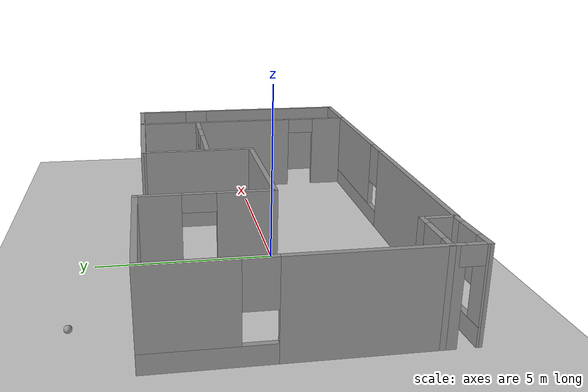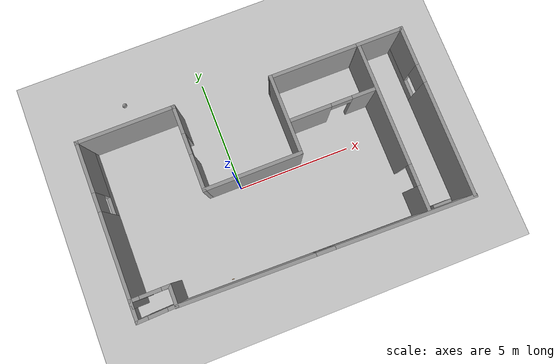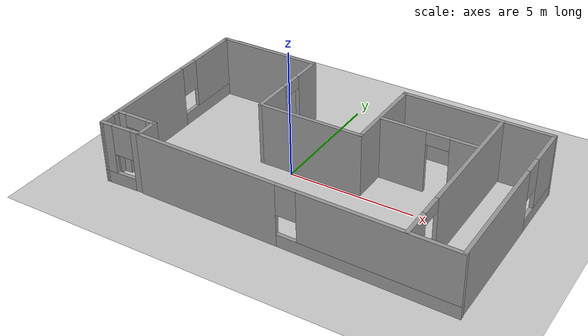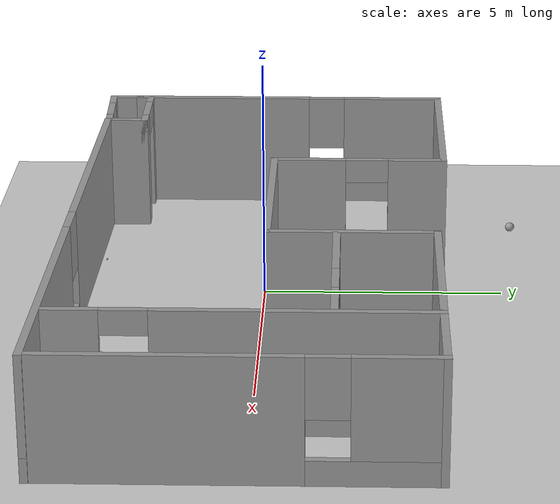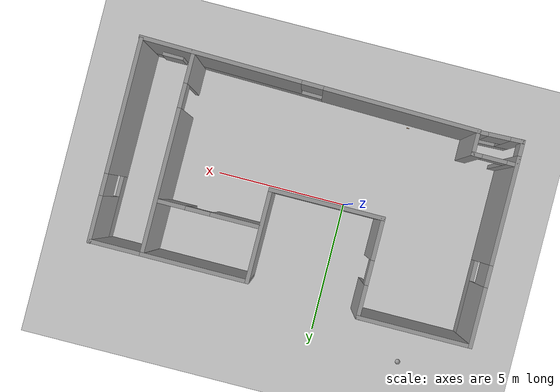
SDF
<sdf version="1.6">
 <world name="default">
  <light name="sun" type="directional">
   <pose>0 0 10 0 -0 0</pose>
   <diffuse>0.8 0.8 0.8 1</diffuse>
   <specular>0.2 0.2 0.2 1</specular>
   <attenuation>
    <range>1000</range>
    <constant>0.9</constant>
    <linear>0.01</linear>
    <quadratic>0.001</quadratic>
   </attenuation>
   <direction>-0.5 0.1 -0.9</direction>
  </light>
  <model name="ground_plane">
   <static>1</static>
   <link name="link">
    <collision name="collision">
     <geometry><plane><normal>0 0 1</normal><size>100 100</size></plane></geometry>
     <surface>
      <contact><collide_bitmask>65535</collide_bitmask></contact>
      <friction><ode><mu>100</mu><mu2>50</mu2></ode></friction>
     </surface>
    </collision>
    <visual name="visual">
     <cast_shadows>0</cast_shadows>
     <geometry><plane><normal>0 0 1</normal><size>100 100</size></plane></geometry>
     <material>
      <script><uri>file://media/materials/scripts/gazebo.material</uri><name>Gazebo/Grey</name></script>
     </material>
    </visual>
   </link>
  </model>
  <gravity>0 0 -9.8</gravity>
  <magnetic_field>6e-06 2.3e-05 -4.2e-05</magnetic_field>
  <atmosphere type="adiabatic"/>
  <physics name="default_physics" default="0" type="ode">
   <max_step_size>0.001</max_step_size>
   <real_time_factor>1</real_time_factor>
   <real_time_update_rate>1000</real_time_update_rate>
  </physics>
  <scene><ambient>0.4 0.4 0.4 1</ambient><background>0.7 0.7 0.7 1</background><shadows>1</shadows></scene>
  <spherical_coordinates>
   <surface_model>EARTH_WGS84</surface_model>
   <latitude_deg>0</latitude_deg>
   <longitude_deg>0</longitude_deg>
   <elevation>0</elevation>
   <heading_deg>0</heading_deg>
  </spherical_coordinates>
  <model name="class">
   <pose>1.54338 -0.063628 0 0 -0 0</pose>
   <link name="Wall_0">
    <pose>-6.98338 0.408628 0 0 -0 1.5708</pose>
    <visual name="Wall_0_Visual_0">
     <pose>-1.50964 0 1.25 0 -0 0</pose>
     <geometry><box><size>3.98071 0.15 2.5</size></box></geometry>
     <material>
      <script><uri>file://media/materials/scripts/gazebo.material</uri><name>Gazebo/Grey</name></script>
      <ambient>1 1 1 1</ambient>
     </material>
     <meta><layer>0</layer></meta>
    </visual>
    <collision name="Wall_0_Collision_0">
     <geometry><box><size>3.98071 0.15 2.5</size></box></geometry>
     <pose>-1.50964 0 1.25 0 -0 0</pose>
    </collision>
    <visual name="Wall_0_Visual_1">
     <pose>1.99036 0 0.25 0 -0 0</pose>
     <geometry><box><size>3.01929 0.15 0.5</size></box></geometry>
     <material>
      <script><uri>file://media/materials/scripts/gazebo.material</uri><name>Gazebo/Grey</name></script>
      <ambient>1 1 1 1</ambient>
     </material>
     <meta><layer>0</layer></meta>
    </visual>
    <collision name="Wall_0_Collision_1">
     <geometry><box><size>3.01929 0.15 0.5</size></box></geometry>
     <pose>1.99036 0 0.25 0 -0 0</pose>
    </collision>
    <visual name="Wall_0_Visual_2">
     <pose>2.39036 0 1.5 0 -0 0</pose>
     <geometry><box><size>2.21929 0.15 2</size></box></geometry>
     <material>
      <script><uri>file://media/materials/scripts/gazebo.material</uri><name>Gazebo/Grey</name></script>
      <ambient>1 1 1 1</ambient>
     </material>
     <meta><layer>0</layer></meta>
    </visual>
    <collision name="Wall_0_Collision_2">
     <geometry><box><size>2.21929 0.15 2</size></box></geometry>
     <pose>2.39036 0 1.5 0 -0 0</pose>
    </collision>
    <visual name="Wall_0_Visual_3">
     <pose>0.880714 0 1.9 0 -0 0</pose>
     <geometry><box><size>0.8 0.15 1.2</size></box></geometry>
     <material>
      <script><uri>file://media/materials/scripts/gazebo.material</uri><name>Gazebo/Grey</name></script>
      <ambient>1 1 1 1</ambient>
     </material>
     <meta><layer>0</layer></meta>
    </visual>
    <collision name="Wall_0_Collision_3">
     <geometry><box><size>0.8 0.15 1.2</size></box></geometry>
     <pose>0.880714 0 1.9 0 -0 0</pose>
    </collision>
   </link>
   <link name="Wall_13">
    <collision name="Wall_13_Collision">
     <geometry><box><size>4.25 0.15 2.5</size></box></geometry>
     <pose>0 0 1.25 0 -0 0</pose>
    </collision>
    <visual name="Wall_13_Visual">
     <pose>0 0 1.25 0 -0 0</pose>
     <geometry><box><size>4.25 0.15 2.5</size></box></geometry>
     <material>
      <script><uri>file://media/materials/scripts/gazebo.material</uri><name>Gazebo/Grey</name></script>
      <ambient>1 1 1 1</ambient>
     </material>
     <meta><layer>0</layer></meta>
    </visual>
    <pose>-4.93338 3.83363 0 0 -0 0</pose>
   </link>
   <link name="Wall_14">
    <pose>-2.88338 2.03363 0 0 0 -1.5708</pose>
    <visual name="Wall_14_Visual_0">
     <pose>-1.24935 0 1.25 0 -0 0</pose>
     <geometry><box><size>1.25129 0.15 2.5</size></box></geometry>
     <material>
      <script><uri>file://media/materials/scripts/gazebo.material</uri><name>Gazebo/Grey</name></script>
      <ambient>1 1 1 1</ambient>
     </material>
     <meta><layer>0</layer></meta>
    </visual>
    <collision name="Wall_14_Collision_0">
     <geometry><box><size>1.25129 0.15 2.5</size></box></geometry>
     <pose>-1.24935 0 1.25 0 -0 0</pose>
    </collision>
    <visual name="Wall_14_Visual_1">
     <pose>1.07565 0 1.25 0 -0 0</pose>
     <geometry><box><size>1.59871 0.15 2.5</size></box></geometry>
     <material>
      <script><uri>file://media/materials/scripts/gazebo.material</uri><name>Gazebo/Grey</name></script>
      <ambient>1 1 1 1</ambient>
     </material>
     <meta><layer>0</layer></meta>
    </visual>
    <collision name="Wall_14_Collision_1">
     <geometry><box><size>1.59871 0.15 2.5</size></box></geometry>
     <pose>1.07565 0 1.25 0 -0 0</pose>
    </collision>
    <visual name="Wall_14_Visual_2">
     <pose>-0.173708 0 2.25 0 -0 0</pose>
     <geometry><box><size>0.9 0.15 0.5</size></box></geometry>
     <material>
      <script><uri>file://media/materials/scripts/gazebo.material</uri><name>Gazebo/Grey</name></script>
      <ambient>1 1 1 1</ambient>
     </material>
     <meta><layer>0</layer></meta>
    </visual>
    <collision name="Wall_14_Collision_2">
     <geometry><box><size>0.9 0.15 0.5</size></box></geometry>
     <pose>-0.173708 0 2.25 0 -0 0</pose>
    </collision>
   </link>
   <link name="Wall_15">
    <collision name="Wall_15_Collision">
     <geometry><box><size>4.25 0.15 2.5</size></box></geometry>
     <pose>0 0 1.25 0 -0 0</pose>
    </collision>
    <visual name="Wall_15_Visual">
     <pose>0 0 1.25 0 -0 0</pose>
     <geometry><box><size>4.25 0.15 2.5</size></box></geometry>
     <material>
      <script><uri>file://media/materials/scripts/gazebo.material</uri><name>Gazebo/Grey</name></script>
      <ambient>1 1 1 1</ambient>
     </material>
     <meta><layer>0</layer></meta>
    </visual>
    <pose>-0.833377 0.233628 0 0 -0 0</pose>
   </link>
   <link name="Wall_16">
    <collision name="Wall_16_Collision">
     <geometry><box><size>3.5 0.15 2.5</size></box></geometry>
     <pose>0 0 1.25 0 -0 0</pose>
    </collision>
    <visual name="Wall_16_Visual">
     <pose>0 0 1.25 0 -0 0</pose>
     <geometry><box><size>3.5 0.15 2.5</size></box></geometry>
     <material>
      <script><uri>file://media/materials/scripts/gazebo.material</uri><name>Gazebo/Grey</name></script>
      <ambient>1 1 1 1</ambient>
     </material>
     <meta><layer>0</layer></meta>
    </visual>
    <pose>1.21662 1.90863 0 0 -0 1.5708</pose>
   </link>
   <link name="Wall_17">
    <collision name="Wall_17_Collision">
     <geometry><box><size>3.99399 0.15 2.5</size></box></geometry>
     <pose>0 0 1.25 0 -0 0</pose>
    </collision>
    <visual name="Wall_17_Visual">
     <pose>0 0 1.25 0 -0 0</pose>
     <geometry><box><size>3.99399 0.15 2.5</size></box></geometry>
     <material>
      <script><uri>file://media/materials/scripts/gazebo.material</uri><name>Gazebo/Grey</name></script>
      <ambient>1 1 1 1</ambient>
     </material>
     <meta><layer>0</layer></meta>
    </visual>
    <pose>3.13862 3.58112 0 0 0 -0.001304</pose>
   </link>
   <link name="Wall_18">
    <pose>5.06061 -0.096385 0 0 0 -1.5708</pose>
    <visual name="Wall_18_Visual_0">
     <pose>-1.0444 0 1.25 0 -0 0</pose>
     <geometry><box><size>5.41121 0.15 2.5</size></box></geometry>
     <material>
      <script><uri>file://media/materials/scripts/gazebo.material</uri><name>Gazebo/Grey</name></script>
      <ambient>1 1 1 1</ambient>
     </material>
     <meta><layer>0</layer></meta>
    </visual>
    <collision name="Wall_18_Collision_0">
     <geometry><box><size>5.41121 0.15 2.5</size></box></geometry>
     <pose>-1.0444 0 1.25 0 -0 0</pose>
    </collision>
    <visual name="Wall_18_Visual_1">
     <pose>3.1556 0 1.25 0 -0 0</pose>
     <geometry><box><size>1.18879 0.15 2.5</size></box></geometry>
     <material>
      <script><uri>file://media/materials/scripts/gazebo.material</uri><name>Gazebo/Grey</name></script>
      <ambient>1 1 1 1</ambient>
     </material>
     <meta><layer>0</layer></meta>
    </visual>
    <collision name="Wall_18_Collision_1">
     <geometry><box><size>1.18879 0.15 2.5</size></box></geometry>
     <pose>3.1556 0 1.25 0 -0 0</pose>
    </collision>
    <visual name="Wall_18_Visual_2">
     <pose>2.11121 0 2.25 0 -0 0</pose>
     <geometry><box><size>0.9 0.15 0.5</size></box></geometry>
     <material>
      <script><uri>file://media/materials/scripts/gazebo.material</uri><name>Gazebo/Grey</name></script>
      <ambient>1 1 1 1</ambient>
     </material>
     <meta><layer>0</layer></meta>
    </visual>
    <collision name="Wall_18_Collision_2">
     <geometry><box><size>0.9 0.15 0.5</size></box></geometry>
     <pose>2.11121 0 2.25 0 -0 0</pose>
    </collision>
   </link>
   <link name="Wall_20">
    <pose>6.96662 -0.088002 0 0 -0 1.5708</pose>
    <visual name="Wall_20_Visual_0">
     <pose>-1.27038 0 1.25 0 -0 0</pose>
     <geometry><box><size>4.95923 0.15 2.5</size></box></geometry>
     <material>
      <script><uri>file://media/materials/scripts/gazebo.material</uri><name>Gazebo/Grey</name></script>
      <ambient>1 1 1 1</ambient>
     </material>
     <meta><layer>0</layer></meta>
    </visual>
    <collision name="Wall_20_Collision_0">
     <geometry><box><size>4.95923 0.15 2.5</size></box></geometry>
     <pose>-1.27038 0 1.25 0 -0 0</pose>
    </collision>
    <visual name="Wall_20_Visual_1">
     <pose>2.47962 0 0.25 0 -0 0</pose>
     <geometry><box><size>2.54076 0.15 0.5</size></box></geometry>
     <material>
      <script><uri>file://media/materials/scripts/gazebo.material</uri><name>Gazebo/Grey</name></script>
      <ambient>1 1 1 1</ambient>
     </material>
     <meta><layer>0</layer></meta>
    </visual>
    <collision name="Wall_20_Collision_1">
     <geometry><box><size>2.54076 0.15 0.5</size></box></geometry>
     <pose>2.47962 0 0.25 0 -0 0</pose>
    </collision>
    <visual name="Wall_20_Visual_2">
     <pose>2.87962 0 1.5 0 -0 0</pose>
     <geometry><box><size>1.74076 0.15 2</size></box></geometry>
     <material>
      <script><uri>file://media/materials/scripts/gazebo.material</uri><name>Gazebo/Grey</name></script>
      <ambient>1 1 1 1</ambient>
     </material>
     <meta><layer>0</layer></meta>
    </visual>
    <collision name="Wall_20_Collision_2">
     <geometry><box><size>1.74076 0.15 2</size></box></geometry>
     <pose>2.87962 0 1.5 0 -0 0</pose>
    </collision>
    <visual name="Wall_20_Visual_3">
     <pose>1.60923 0 1.9 0 -0 0</pose>
     <geometry><box><size>0.8 0.15 1.2</size></box></geometry>
     <material>
      <script><uri>file://media/materials/scripts/gazebo.material</uri><name>Gazebo/Grey</name></script>
      <ambient>1 1 1 1</ambient>
     </material>
     <meta><layer>0</layer></meta>
    </visual>
    <collision name="Wall_20_Collision_3">
     <geometry><box><size>0.8 0.15 1.2</size></box></geometry>
     <pose>1.60923 0 1.9 0 -0 0</pose>
    </collision>
   </link>
   <link name="Wall_22">
    <collision name="Wall_22_Collision">
     <geometry><box><size>2 0.15 2.5</size></box></geometry>
     <pose>0 0 1.25 0 -0 0</pose>
    </collision>
    <visual name="Wall_22_Visual">
     <pose>0 0 1.25 0 -0 0</pose>
     <geometry><box><size>2 0.15 2.5</size></box></geometry>
     <material>
      <script><uri>file://media/materials/scripts/gazebo.material</uri><name>Gazebo/Grey</name></script>
      <ambient>1 1 1 1</ambient>
     </material>
     <meta><layer>0</layer></meta>
    </visual>
    <pose>5.96831 3.57862 0 0 -0 0</pose>
   </link>
   <link name="Wall_25">
    <collision name="Wall_25_Collision">
     <geometry><box><size>0.15 0.15 2.5</size></box></geometry>
     <pose>0 0 1.25 0 -0 0</pose>
    </collision>
    <visual name="Wall_25_Visual">
     <pose>0 0 1.25 0 -0 0</pose>
     <geometry><box><size>0.15 0.15 2.5</size></box></geometry>
     <material>
      <script><uri>file://media/materials/scripts/gazebo.material</uri><name>Gazebo/Grey</name></script>
      <ambient>1 1 1 1</ambient>
     </material>
     <meta><layer>0</layer></meta>
    </visual>
    <pose>6.96662 3.587 0 0 -0 0</pose>
   </link>
   <link name="Wall_27">
    <pose>3.11204 1.60739 0 0 -0 0</pose>
    <visual name="Wall_27_Visual_0">
     <pose>-0.955861 0 1.25 0 -0 0</pose>
     <geometry><box><size>1.83828 0.15 2.5</size></box></geometry>
     <material>
      <script><uri>file://media/materials/scripts/gazebo.material</uri><name>Gazebo/Grey</name></script>
      <ambient>1 1 1 1</ambient>
     </material>
     <meta><layer>0</layer></meta>
    </visual>
    <collision name="Wall_27_Collision_0">
     <geometry><box><size>1.83828 0.15 2.5</size></box></geometry>
     <pose>-0.955861 0 1.25 0 -0 0</pose>
    </collision>
    <visual name="Wall_27_Visual_1">
     <pose>1.36914 0 1.25 0 -0 0</pose>
     <geometry><box><size>1.01172 0.15 2.5</size></box></geometry>
     <material>
      <script><uri>file://media/materials/scripts/gazebo.material</uri><name>Gazebo/Grey</name></script>
      <ambient>1 1 1 1</ambient>
     </material>
     <meta><layer>0</layer></meta>
    </visual>
    <collision name="Wall_27_Collision_1">
     <geometry><box><size>1.01172 0.15 2.5</size></box></geometry>
     <pose>1.36914 0 1.25 0 -0 0</pose>
    </collision>
    <visual name="Wall_27_Visual_2">
     <pose>0.413279 0 2.25 0 -0 0</pose>
     <geometry><box><size>0.9 0.15 0.5</size></box></geometry>
     <material>
      <script><uri>file://media/materials/scripts/gazebo.material</uri><name>Gazebo/Grey</name></script>
      <ambient>1 1 1 1</ambient>
     </material>
     <meta><layer>0</layer></meta>
    </visual>
    <collision name="Wall_27_Collision_2">
     <geometry><box><size>0.9 0.15 0.5</size></box></geometry>
     <pose>0.413279 0 2.25 0 -0 0</pose>
    </collision>
   </link>
   <link name="Wall_4">
    <pose>-6.18338 -2.76637 0 0 -0 0</pose>
    <visual name="Wall_4_Visual_0">
     <pose>-0.6525 0 1.25 0 -0 0</pose>
     <geometry><box><size>0.445 0.15 2.5</size></box></geometry>
     <material>
      <script><uri>file://media/materials/scripts/gazebo.material</uri><name>Gazebo/Grey</name></script>
      <ambient>1 1 1 1</ambient>
     </material>
     <meta><layer>0</layer></meta>
    </visual>
    <collision name="Wall_4_Collision_0">
     <geometry><box><size>0.445 0.15 2.5</size></box></geometry>
     <pose>-0.6525 0 1.25 0 -0 0</pose>
    </collision>
    <visual name="Wall_4_Visual_1">
     <pose>0.6725 0 1.25 0 -0 0</pose>
     <geometry><box><size>0.405 0.15 2.5</size></box></geometry>
     <material>
      <script><uri>file://media/materials/scripts/gazebo.material</uri><name>Gazebo/Grey</name></script>
      <ambient>1 1 1 1</ambient>
     </material>
     <meta><layer>0</layer></meta>
    </visual>
    <collision name="Wall_4_Collision_1">
     <geometry><box><size>0.405 0.15 2.5</size></box></geometry>
     <pose>0.6725 0 1.25 0 -0 0</pose>
    </collision>
    <visual name="Wall_4_Visual_2">
     <pose>0.02 0 2.25 0 -0 0</pose>
     <geometry><box><size>0.9 0.15 0.5</size></box></geometry>
     <material>
      <script><uri>file://media/materials/scripts/gazebo.material</uri><name>Gazebo/Grey</name></script>
      <ambient>1 1 1 1</ambient>
     </material>
     <meta><layer>0</layer></meta>
    </visual>
    <collision name="Wall_4_Collision_2">
     <geometry><box><size>0.9 0.15 0.5</size></box></geometry>
     <pose>0.02 0 2.25 0 -0 0</pose>
    </collision>
   </link>
   <link name="Wall_5">
    <collision name="Wall_5_Collision">
     <geometry><box><size>0.947399 0.15 2.5</size></box></geometry>
     <pose>0 0 1.25 0 -0 0</pose>
    </collision>
    <visual name="Wall_5_Visual">
     <pose>0 0 1.25 0 -0 0</pose>
     <geometry><box><size>0.947399 0.15 2.5</size></box></geometry>
     <material>
      <script><uri>file://media/materials/scripts/gazebo.material</uri><name>Gazebo/Grey</name></script>
      <ambient>1 1 1 1</ambient>
     </material>
     <meta><layer>0</layer></meta>
    </visual>
    <pose>-5.38338 -3.16507 0 0 0 -1.5708</pose>
   </link>
   <link name="Wall_6">
    <pose>-6.18338 -3.59007 0 0 0 -3.10873</pose>
    <visual name="Wall_6_Visual_0">
     <pose>-0.661609 0 1.25 0 -0 0</pose>
     <geometry><box><size>0.426781 0.15 2.5</size></box></geometry>
     <material>
      <script><uri>file://media/materials/scripts/gazebo.material</uri><name>Gazebo/Grey</name></script>
      <ambient>1 1 1 1</ambient>
     </material>
     <meta><layer>0</layer></meta>
    </visual>
    <collision name="Wall_6_Collision_0">
     <geometry><box><size>0.426781 0.15 2.5</size></box></geometry>
     <pose>-0.661609 0 1.25 0 -0 0</pose>
    </collision>
    <visual name="Wall_6_Visual_1">
     <pose>0.213391 0 0.25 0 -0 0</pose>
     <geometry><box><size>1.32322 0.15 0.5</size></box></geometry>
     <material>
      <script><uri>file://media/materials/scripts/gazebo.material</uri><name>Gazebo/Grey</name></script>
      <ambient>1 1 1 1</ambient>
     </material>
     <meta><layer>0</layer></meta>
    </visual>
    <collision name="Wall_6_Collision_1">
     <geometry><box><size>1.32322 0.15 0.5</size></box></geometry>
     <pose>0.213391 0 0.25 0 -0 0</pose>
    </collision>
    <visual name="Wall_6_Visual_2">
     <pose>0.613391 0 1.5 0 -0 0</pose>
     <geometry><box><size>0.523219 0.15 2</size></box></geometry>
     <material>
      <script><uri>file://media/materials/scripts/gazebo.material</uri><name>Gazebo/Grey</name></script>
      <ambient>1 1 1 1</ambient>
     </material>
     <meta><layer>0</layer></meta>
    </visual>
    <collision name="Wall_6_Collision_2">
     <geometry><box><size>0.523219 0.15 2</size></box></geometry>
     <pose>0.613391 0 1.5 0 -0 0</pose>
    </collision>
    <visual name="Wall_6_Visual_3">
     <pose>-0.048219 0 1.9 0 -0 0</pose>
     <geometry><box><size>0.8 0.15 1.2</size></box></geometry>
     <material>
      <script><uri>file://media/materials/scripts/gazebo.material</uri><name>Gazebo/Grey</name></script>
      <ambient>1 1 1 1</ambient>
     </material>
     <meta><layer>0</layer></meta>
    </visual>
    <collision name="Wall_6_Collision_3">
     <geometry><box><size>0.8 0.15 1.2</size></box></geometry>
     <pose>-0.048219 0 1.9 0 -0 0</pose>
    </collision>
   </link>
   <link name="Wall_7">
    <pose>-6.98338 -3.31637 0 0 -0 1.5708</pose>
    <visual name="Wall_7_Visual_0">
     <pose>-0.3025 0 1.25 0 -0 0</pose>
     <geometry><box><size>0.145 0.15 2.5</size></box></geometry>
     <material>
      <script><uri>file://media/materials/scripts/gazebo.material</uri><name>Gazebo/Grey</name></script>
      <ambient>1 1 1 1</ambient>
     </material>
     <meta><layer>0</layer></meta>
    </visual>
    <collision name="Wall_7_Collision_0">
     <geometry><box><size>0.145 0.15 2.5</size></box></geometry>
     <pose>-0.3025 0 1.25 0 -0 0</pose>
    </collision>
    <visual name="Wall_7_Visual_1">
     <pose>0.0725 0 2.25 0 -0 0</pose>
     <geometry><box><size>0.605 0.15 0.5</size></box></geometry>
     <material>
      <script><uri>file://media/materials/scripts/gazebo.material</uri><name>Gazebo/Grey</name></script>
      <ambient>1 1 1 1</ambient>
     </material>
     <meta><layer>0</layer></meta>
    </visual>
    <collision name="Wall_7_Collision_1">
     <geometry><box><size>0.605 0.15 0.5</size></box></geometry>
     <pose>0.0725 0 2.25 0 -0 0</pose>
    </collision>
   </link>
   <link name="Wall_9">
    <pose>0.800269 -3.71112 0 0 0 -0.019574</pose>
    <visual name="Wall_9_Visual_0">
     <pose>-3.37935 0 1.25 0 -0 0</pose>
     <geometry><box><size>5.76096 0.15 2.5</size></box></geometry>
     <material>
      <script><uri>file://media/materials/scripts/gazebo.material</uri><name>Gazebo/Grey</name></script>
      <ambient>1 1 1 1</ambient>
     </material>
     <meta><layer>0</layer></meta>
    </visual>
    <collision name="Wall_9_Collision_0">
     <geometry><box><size>5.76096 0.15 2.5</size></box></geometry>
     <pose>-3.37935 0 1.25 0 -0 0</pose>
    </collision>
    <visual name="Wall_9_Visual_1">
     <pose>2.88048 0 0.25 0 -0 0</pose>
     <geometry><box><size>6.7587 0.15 0.5</size></box></geometry>
     <material>
      <script><uri>file://media/materials/scripts/gazebo.material</uri><name>Gazebo/Grey</name></script>
      <ambient>1 1 1 1</ambient>
     </material>
     <meta><layer>0</layer></meta>
    </visual>
    <collision name="Wall_9_Collision_1">
     <geometry><box><size>6.7587 0.15 0.5</size></box></geometry>
     <pose>2.88048 0 0.25 0 -0 0</pose>
    </collision>
    <visual name="Wall_9_Visual_2">
     <pose>3.28048 0 1.5 0 -0 0</pose>
     <geometry><box><size>5.9587 0.15 2</size></box></geometry>
     <material>
      <script><uri>file://media/materials/scripts/gazebo.material</uri><name>Gazebo/Grey</name></script>
      <ambient>1 1 1 1</ambient>
     </material>
     <meta><layer>0</layer></meta>
    </visual>
    <collision name="Wall_9_Collision_2">
     <geometry><box><size>5.9587 0.15 2</size></box></geometry>
     <pose>3.28048 0 1.5 0 -0 0</pose>
    </collision>
    <visual name="Wall_9_Visual_3">
     <pose>-0.098869 0 1.9 0 -0 0</pose>
     <geometry><box><size>0.8 0.15 1.2</size></box></geometry>
     <material>
      <script><uri>file://media/materials/scripts/gazebo.material</uri><name>Gazebo/Grey</name></script>
      <ambient>1 1 1 1</ambient>
     </material>
     <meta><layer>0</layer></meta>
    </visual>
    <collision name="Wall_9_Collision_3">
     <geometry><box><size>0.8 0.15 1.2</size></box></geometry>
     <pose>-0.098869 0 1.9 0 -0 0</pose>
    </collision>
   </link>
   <link name="Window_7">
    <collision name="Window_7_Collision">
     <geometry><box><size>0.8 0.17 0.8</size></box></geometry>
     <pose>0 0 0.4 0 -0 0</pose>
    </collision>
    <visual name="Window_7_Visual">
     <pose>0 0 0.4 0 -0 0</pose>
     <geometry><box><size>0.8 0.17 0.8</size></box></geometry>
     <material>
      <script><uri>file://media/materials/scripts/gazebo.material</uri><name>Gazebo/Grey</name></script>
     </material>
    </visual>
    <pose>6.03109 -3.69912 0.5 0 -0 0</pose>
   </link>
   <static>1</static>
  </model>
  <model name="wood_block_10_2_1cm">
   <link name="link">
    <pose>0 0 0.005 0 -0 0</pose>
    <inertial>
     <mass>0.0125</mass>
     <inertia>
      <ixx>7.55208e-07</ixx>
      <ixy>0</ixy>
      <ixz>0</ixz>
      <iyy>1.05208e-05</iyy>
      <iyz>0</iyz>
      <izz>1.10677e-05</izz>
     </inertia>
    </inertial>
    <collision name="collision">
     <geometry><box><size>0.1 0.025 0.01</size></box></geometry>
     <surface>
      <contact>
       <poissons_ratio>0.347</poissons_ratio>
       <elastic_modulus>8.8e+09</elastic_modulus>
       <ode><kp>100000</kp><kd>1</kd><max_vel>1</max_vel><min_depth>0.001</min_depth></ode>
      </contact>
      <friction>
       <torsional>
        <coefficient>1</coefficient>
        <use_patch_radius>0</use_patch_radius>
        <surface_radius>0.05</surface_radius>
       </torsional>
      </friction>
     </surface>
    </collision>
    <visual name="visual">
     <geometry><box><size>0.1 0.025 0.01</size></box></geometry>
     <material>
      <script><uri>file://media/materials/scripts/gazebo.material</uri><name>Gazebo/Wood</name></script>
     </material>
    </visual>
   </link>
   <pose>-1.68696 -3.52068 -0.001 0 -0 0</pose>
  </model>
  <model name="my_ball">
   <link name="link_0">
    <inertial>
     <mass>1</mass>
     <inertia><ixx>0.1</ixx><ixy>0</ixy><ixz>0</ixz><iyy>0.1</iyy><iyz>0</iyz><izz>0.1</izz></inertia>
    </inertial>
    <visual name="visual">
     <geometry><sphere><radius>0.1</radius></sphere></geometry>
     <material>
      <lighting>1</lighting>
      <script><uri>file://media/materials/scripts/gazebo.material</uri><name>Gazebo/Grey</name></script>
      <shader type="pixel"><normal_map>__default__</normal_map></shader>
      <ambient>1 1 1 1</ambient>
      <diffuse>1 1 1 1</diffuse>
      <specular>1 1 1 1</specular>
      <emissive>1 1 1 1</emissive>
     </material>
    </visual>
    <collision name="collision">
     <geometry><sphere><radius>0.1</radius></sphere></geometry>
     <surface>
      <friction>
       <ode><mu>1</mu><mu2>1</mu2><fdir1>0 0 0</fdir1><slip1>0</slip1><slip2>0</slip2></ode>
       <torsional>
        <coefficient>1</coefficient>
        <patch_radius>0</patch_radius>
        <surface_radius>0</surface_radius>
        <use_patch_radius>1</use_patch_radius>
        <ode><slip>0</slip></ode>
       </torsional>
      </friction>
      <bounce><restitution_coefficient>0</restitution_coefficient><threshold>1e+06</threshold></bounce>
      <contact>
       <collide_without_contact>0</collide_without_contact>
       <collide_without_contact_bitmask>1</collide_without_contact_bitmask>
       <collide_bitmask>1</collide_bitmask>
       <ode>
        <soft_cfm>0</soft_cfm>
        <soft_erp>0.2</soft_erp>
        <kp>1e+13</kp>
        <kd>1</kd>
        <max_vel>0.01</max_vel>
        <min_depth>0</min_depth>
       </ode>
       <bullet>
        <split_impulse>1</split_impulse>
        <split_impulse_penetration_threshold>-0.01</split_impulse_penetration_threshold>
        <soft_cfm>0</soft_cfm>
        <soft_erp>0.2</soft_erp>
        <kp>1e+13</kp>
        <kd>1</kd>
       </bullet>
      </contact>
     </surface>
    </collision>
   </link>
   <static>0</static>
   <pose>-3.54586 5.39365 0.1 0 -0 0</pose>
  </model>
 </world>
</sdf>
